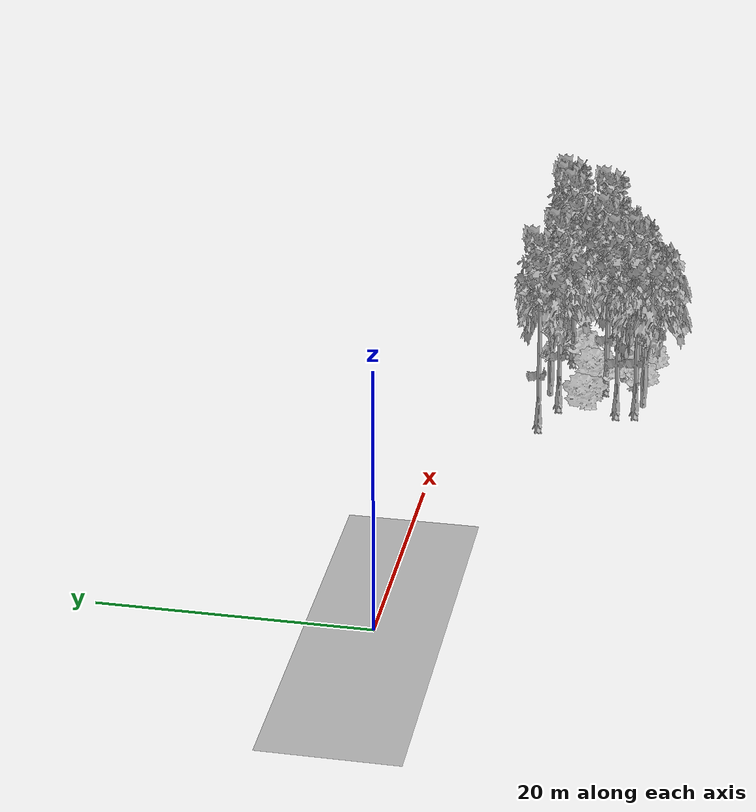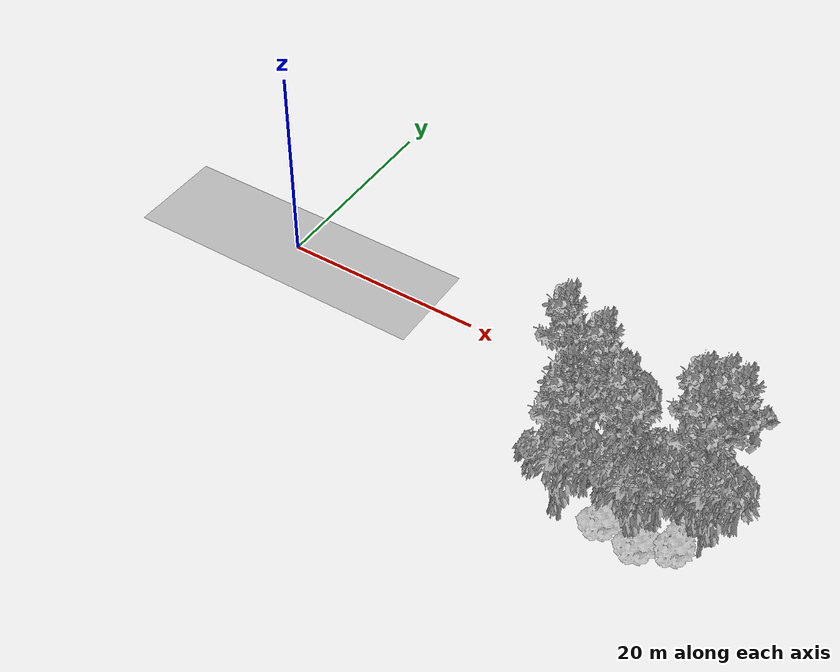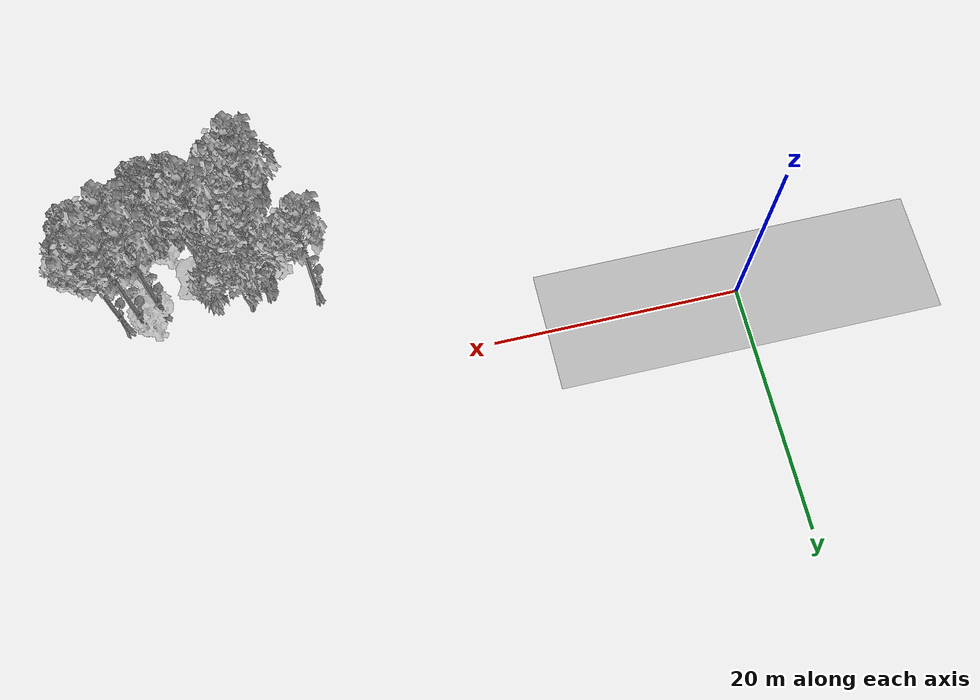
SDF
<sdf version="1.7">
 <world name="default">
  <model name="ground_plane">
   <static>1</static>
   <link name="link">
    <collision name="collision">
     <pose>-50 0 0 0 -0 0</pose>
     <geometry><plane><normal>0 0 1</normal><size>100 100</size></plane></geometry>
     <surface><contact><ode><min_depth>0.01</min_depth><max_vel>0</max_vel></ode></contact></surface>
    </collision>
    <visual name="grass">
     <cast_shadows>0</cast_shadows>
     <geometry>
      <mesh>
       <scale>0.5814285714285714 0.18142857142857144 0.1</scale>
       <uri>file://grass_plane/meshes/grass_plane.dae</uri>
      </mesh>
     </geometry>
    </visual>
   </link>
  </model>
  <model name="Tree 3">
   <static>1</static>
   <pose>36.6291474375721 -10.39728852935579 0 1.57079 -0 0</pose>
   <link name="link">
    <collision name="collision">
     <geometry><mesh><scale>3 2 3</scale><uri>model://tree_3/meshes/tree_3.obj</uri></mesh></geometry>
    </collision>
    <visual name="visual">
     <geometry><mesh><scale>3 2 3</scale><uri>model://tree_3/meshes/tree_3.obj</uri></mesh></geometry>
    </visual>
   </link>
  </model>
  <model name="Tree 14">
   <static>1</static>
   <pose>38.1280172015788 -7.264740103736585 0 1.57079 -0 0</pose>
   <link name="link">
    <collision name="collision">
     <geometry><mesh><scale>3.5 5 3.5</scale><uri>model://tree_2/meshes/tree_2.obj</uri></mesh></geometry>
    </collision>
    <visual name="visual">
     <geometry><mesh><scale>3.5 5 3.5</scale><uri>model://tree_2/meshes/tree_2.obj</uri></mesh></geometry>
    </visual>
   </link>
  </model>
  <model name="Tree 64">
   <static>1</static>
   <pose>45.12648657521429 -8.266611101992048 0 1.57079 -0 0</pose>
   <link name="link">
    <collision name="collision">
     <geometry><mesh><scale>3.5 5 3.5</scale><uri>model://tree_9/meshes/tree_9.obj</uri></mesh></geometry>
    </collision>
    <visual name="visual">
     <geometry><mesh><scale>3.5 5 3.5</scale><uri>model://tree_9/meshes/tree_9.obj</uri></mesh></geometry>
    </visual>
   </link>
  </model>
  <model name="Tree 83">
   <static>1</static>
   <pose>43.17685679798089 -14.4128879489318 0 1.57079 -0 0</pose>
   <link name="link">
    <collision name="collision">
     <geometry><mesh><scale>3.5 5 3.5</scale><uri>model://tree_2/meshes/tree_2.obj</uri></mesh></geometry>
    </collision>
    <visual name="visual">
     <geometry><mesh><scale>3.5 5 3.5</scale><uri>model://tree_2/meshes/tree_2.obj</uri></mesh></geometry>
    </visual>
   </link>
  </model>
  <model name="Tree 202">
   <static>1</static>
   <pose>40.6188962561601 -13.803561209235102 0 1.57079 -0 0</pose>
   <link name="link">
    <collision name="collision">
     <geometry><mesh><scale>4 2.5 4</scale><uri>model://tree_1/meshes/tree_1.obj</uri></mesh></geometry>
    </collision>
    <visual name="visual">
     <geometry><mesh><scale>4 2.5 4</scale><uri>model://tree_1/meshes/tree_1.obj</uri></mesh></geometry>
    </visual>
   </link>
  </model>
  <model name="Tree 224">
   <static>1</static>
   <pose>32.86170119743993 -6.978053373294822 0 1.57079 -0 0</pose>
   <link name="link">
    <collision name="collision">
     <geometry><mesh><scale>3.5 5 3.5</scale><uri>model://tree_9/meshes/tree_9.obj</uri></mesh></geometry>
    </collision>
    <visual name="visual">
     <geometry><mesh><scale>3.5 5 3.5</scale><uri>model://tree_9/meshes/tree_9.obj</uri></mesh></geometry>
    </visual>
   </link>
  </model>
  <model name="Tree 259">
   <static>1</static>
   <pose>41.61999296639232 -10.634443234872222 0 1.57079 -0 0</pose>
   <link name="link">
    <collision name="collision">
     <geometry><mesh><scale>3 2 3</scale><uri>model://tree_3/meshes/tree_3.obj</uri></mesh></geometry>
    </collision>
    <visual name="visual">
     <geometry><mesh><scale>3 2 3</scale><uri>model://tree_3/meshes/tree_3.obj</uri></mesh></geometry>
    </visual>
   </link>
  </model>
  <model name="Tree 269">
   <static>1</static>
   <pose>48.124141467687934 -7.676750158165153 0 1.57079 -0 0</pose>
   <link name="link">
    <collision name="collision">
     <geometry><mesh><scale>3.5 5 3.5</scale><uri>model://tree_9/meshes/tree_9.obj</uri></mesh></geometry>
    </collision>
    <visual name="visual">
     <geometry><mesh><scale>3.5 5 3.5</scale><uri>model://tree_9/meshes/tree_9.obj</uri></mesh></geometry>
    </visual>
   </link>
  </model>
  <model name="Tree 281">
   <static>1</static>
   <pose>47.351902548097684 -11.74786256628979 0 1.57079 -0 0</pose>
   <link name="link">
    <collision name="collision">
     <geometry><mesh><scale>3.5 5 3.5</scale><uri>model://tree_2/meshes/tree_2.obj</uri></mesh></geometry>
    </collision>
    <visual name="visual">
     <geometry><mesh><scale>3.5 5 3.5</scale><uri>model://tree_2/meshes/tree_2.obj</uri></mesh></geometry>
    </visual>
   </link>
  </model>
  <model name="Tree 297">
   <static>1</static>
   <pose>46.67180530013307 -7.512696534399907 0 1.57079 -0 0</pose>
   <link name="link">
    <collision name="collision">
     <geometry><mesh><scale>3.5 5 3.5</scale><uri>model://tree_9/meshes/tree_9.obj</uri></mesh></geometry>
    </collision>
    <visual name="visual">
     <geometry><mesh><scale>3.5 5 3.5</scale><uri>model://tree_9/meshes/tree_9.obj</uri></mesh></geometry>
    </visual>
   </link>
  </model>
  <model name="Tree 299">
   <static>1</static>
   <pose>36.6785639422925 -8.128593126240903 0 1.57079 -0 0</pose>
   <link name="link">
    <collision name="collision">
     <geometry><mesh><scale>3.5 5 3.5</scale><uri>model://tree_9/meshes/tree_9.obj</uri></mesh></geometry>
    </collision>
    <visual name="visual">
     <geometry><mesh><scale>3.5 5 3.5</scale><uri>model://tree_9/meshes/tree_9.obj</uri></mesh></geometry>
    </visual>
   </link>
  </model>
  <model name="Tree 306">
   <static>1</static>
   <pose>45.905329788306645 -8.360482259396063 0 1.57079 -0 0</pose>
   <link name="link">
    <collision name="collision">
     <geometry><mesh><scale>4 2.5 4</scale><uri>model://tree_1/meshes/tree_1.obj</uri></mesh></geometry>
    </collision>
    <visual name="visual">
     <geometry><mesh><scale>4 2.5 4</scale><uri>model://tree_1/meshes/tree_1.obj</uri></mesh></geometry>
    </visual>
   </link>
  </model>
  <model name="Tree 337">
   <static>1</static>
   <pose>44.07617062055688 -14.291990012649588 0 1.57079 -0 0</pose>
   <link name="link">
    <collision name="collision">
     <geometry><mesh><scale>4 2.5 4</scale><uri>model://tree_1/meshes/tree_1.obj</uri></mesh></geometry>
    </collision>
    <visual name="visual">
     <geometry><mesh><scale>4 2.5 4</scale><uri>model://tree_1/meshes/tree_1.obj</uri></mesh></geometry>
    </visual>
   </link>
  </model>
  <model name="Tree 344">
   <static>1</static>
   <pose>43.055120904553576 -13.824339433098158 0 1.57079 -0 0</pose>
   <link name="link">
    <collision name="collision">
     <geometry><mesh><scale>3.5 5 3.5</scale><uri>model://tree_2/meshes/tree_2.obj</uri></mesh></geometry>
    </collision>
    <visual name="visual">
     <geometry><mesh><scale>3.5 5 3.5</scale><uri>model://tree_2/meshes/tree_2.obj</uri></mesh></geometry>
    </visual>
   </link>
  </model>
  <model name="Tree 352">
   <static>1</static>
   <pose>48.57770282626437 -12.01886716617 0 1.57079 -0 0</pose>
   <link name="link">
    <collision name="collision">
     <geometry><mesh><scale>3.5 5 3.5</scale><uri>model://tree_2/meshes/tree_2.obj</uri></mesh></geometry>
    </collision>
    <visual name="visual">
     <geometry><mesh><scale>3.5 5 3.5</scale><uri>model://tree_2/meshes/tree_2.obj</uri></mesh></geometry>
    </visual>
   </link>
  </model>
  <model name="Tree 409">
   <static>1</static>
   <pose>36.57585017547268 -14.337793587793971 0 1.57079 -0 0</pose>
   <link name="link">
    <collision name="collision">
     <geometry><mesh><scale>3.5 5 3.5</scale><uri>model://tree_9/meshes/tree_9.obj</uri></mesh></geometry>
    </collision>
    <visual name="visual">
     <geometry><mesh><scale>3.5 5 3.5</scale><uri>model://tree_9/meshes/tree_9.obj</uri></mesh></geometry>
    </visual>
   </link>
  </model>
  <model name="Tree 457">
   <static>1</static>
   <pose>44.30727498399666 -13.047530837049768 0 1.57079 -0 0</pose>
   <link name="link">
    <collision name="collision">
     <geometry><mesh><scale>3.5 5 3.5</scale><uri>model://tree_2/meshes/tree_2.obj</uri></mesh></geometry>
    </collision>
    <visual name="visual">
     <geometry><mesh><scale>3.5 5 3.5</scale><uri>model://tree_2/meshes/tree_2.obj</uri></mesh></geometry>
    </visual>
   </link>
  </model>
  <model name="Tree 467">
   <static>1</static>
   <pose>40.36741248815571 -11.554114032145616 0 1.57079 -0 0</pose>
   <link name="link">
    <collision name="collision">
     <geometry><mesh><scale>3.5 5 3.5</scale><uri>model://tree_9/meshes/tree_9.obj</uri></mesh></geometry>
    </collision>
    <visual name="visual">
     <geometry><mesh><scale>3.5 5 3.5</scale><uri>model://tree_9/meshes/tree_9.obj</uri></mesh></geometry>
    </visual>
   </link>
  </model>
  <model name="Tree 477">
   <static>1</static>
   <pose>46.65680868701614 -12.960142910800961 0 1.57079 -0 0</pose>
   <link name="link">
    <collision name="collision">
     <geometry><mesh><scale>4 2.5 4</scale><uri>model://tree_1/meshes/tree_1.obj</uri></mesh></geometry>
    </collision>
    <visual name="visual">
     <geometry><mesh><scale>4 2.5 4</scale><uri>model://tree_1/meshes/tree_1.obj</uri></mesh></geometry>
    </visual>
   </link>
  </model>
  <model name="Tree 484">
   <static>1</static>
   <pose>46.21539300647987 -11.020067646547727 0 1.57079 -0 0</pose>
   <link name="link">
    <collision name="collision">
     <geometry><mesh><scale>3.5 5 3.5</scale><uri>model://tree_9/meshes/tree_9.obj</uri></mesh></geometry>
    </collision>
    <visual name="visual">
     <geometry><mesh><scale>3.5 5 3.5</scale><uri>model://tree_9/meshes/tree_9.obj</uri></mesh></geometry>
    </visual>
   </link>
  </model>
  <model name="Tree 486">
   <static>1</static>
   <pose>37.409859534231074 -14.920515324541102 0 1.57079 -0 0</pose>
   <link name="link">
    <collision name="collision">
     <geometry><mesh><scale>3.5 5 3.5</scale><uri>model://tree_2/meshes/tree_2.obj</uri></mesh></geometry>
    </collision>
    <visual name="visual">
     <geometry><mesh><scale>3.5 5 3.5</scale><uri>model://tree_2/meshes/tree_2.obj</uri></mesh></geometry>
    </visual>
   </link>
  </model>
  <model name="Tree 518">
   <static>1</static>
   <pose>36.27215857439744 -12.845326858071669 0 1.57079 -0 0</pose>
   <link name="link">
    <collision name="collision">
     <geometry><mesh><scale>3.5 5 3.5</scale><uri>model://tree_9/meshes/tree_9.obj</uri></mesh></geometry>
    </collision>
    <visual name="visual">
     <geometry><mesh><scale>3.5 5 3.5</scale><uri>model://tree_9/meshes/tree_9.obj</uri></mesh></geometry>
    </visual>
   </link>
  </model>
  <model name="Tree 520">
   <static>1</static>
   <pose>41.80167637683155 -12.855859449137455 0 1.57079 -0 0</pose>
   <link name="link">
    <collision name="collision">
     <geometry><mesh><scale>3.5 5 3.5</scale><uri>model://tree_2/meshes/tree_2.obj</uri></mesh></geometry>
    </collision>
    <visual name="visual">
     <geometry><mesh><scale>3.5 5 3.5</scale><uri>model://tree_2/meshes/tree_2.obj</uri></mesh></geometry>
    </visual>
   </link>
  </model>
 </world>
</sdf>
